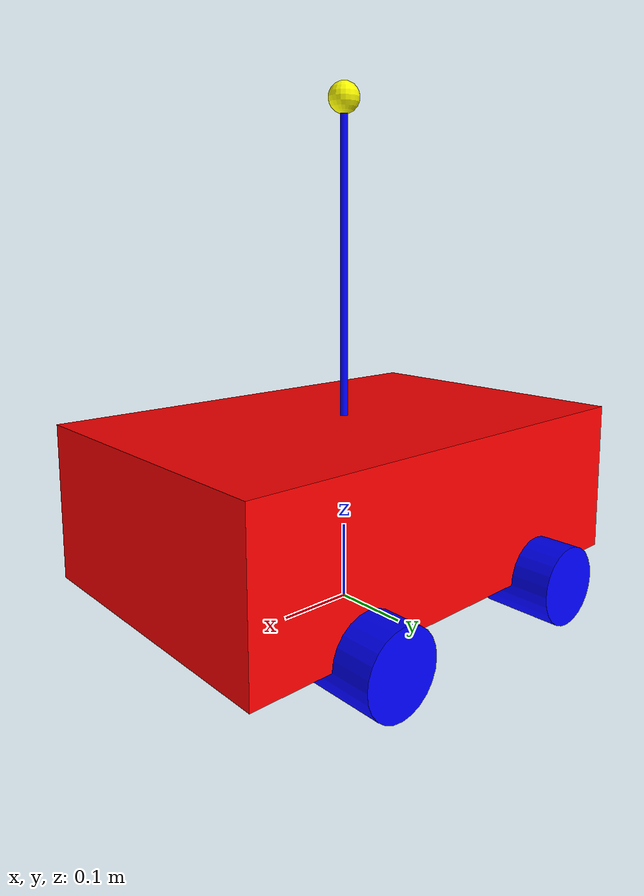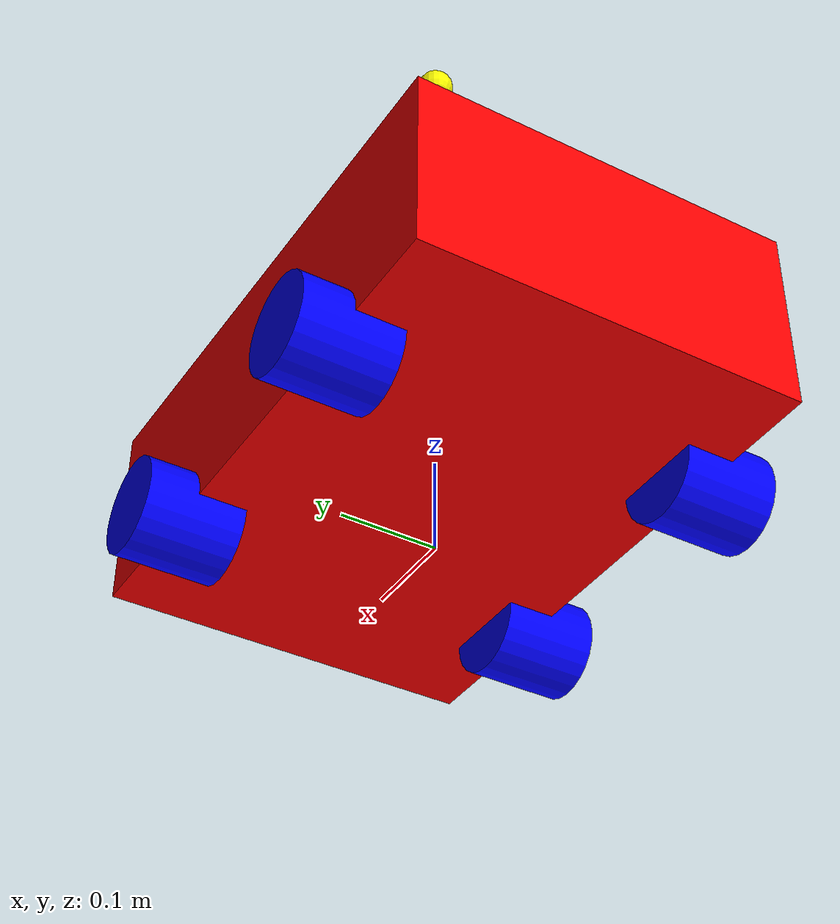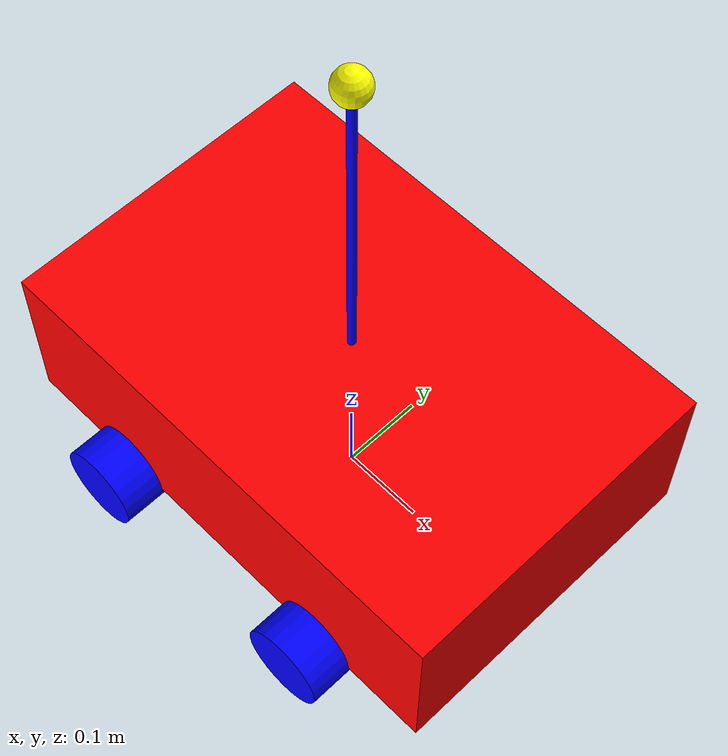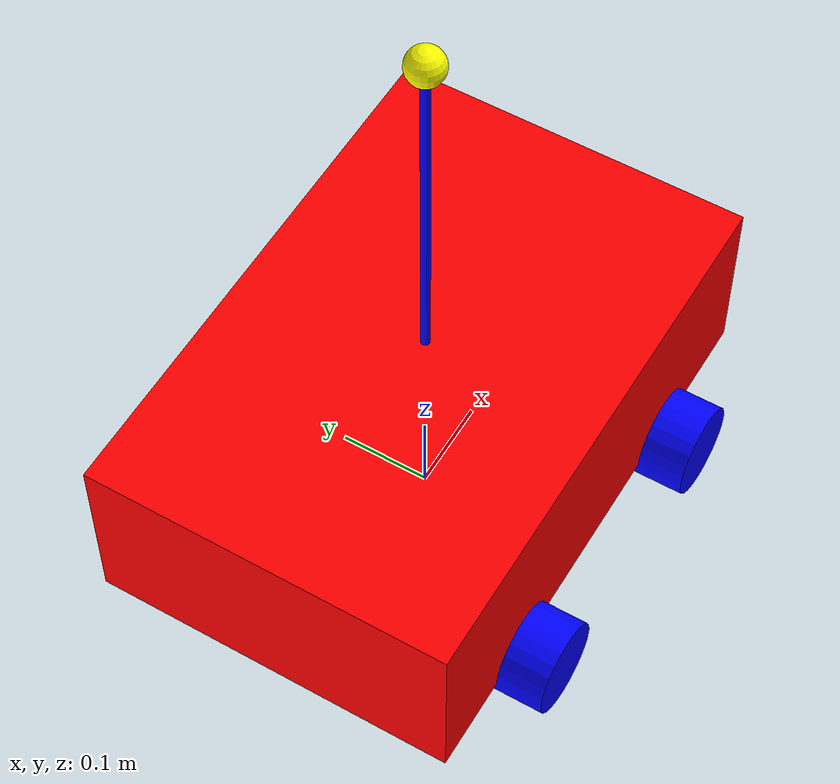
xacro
<?xml version="1.0"?>
<robot name="cartpole_balancer" xmlns:xacro="http://www.ros.org/wiki/xacro">
    <xacro:property name = "base_length" value = "0.6"/>
    <xacro:property name = "base_width" value = "0.4"/>
    <xacro:property name = "base_height" value = "0.2"/>
    <xacro:property name = "wheel_length" value = "0.1"/>
    <xacro:property name = "wheel_radius" value = "0.05"/>
    <xacro:property name = "cartpole_length" value = "0.4"/>
    <xacro:property name = "cartpole_radius" value = "0.005"/>
    <xacro:property name = "bob_radius" value = "0.02"/>
    <xacro:property name = "base_mass" value = "5"/>
    <xacro:property name = "wheel_mass" value = "1"/>
    <xacro:property name = "cartpole_mass" value = "0.1"/>
    <xacro:property name = "bob_mass" value = "0.5"/>

    <link name="root_link"/>
    <joint name="root_base_joint" type="fixed">
        <parent link="root_link"/>
        <child link="base_link"/>
        <origin xyz="0.0 0.0 0.15" rpy="0.0 0.0 0.0"/>
    </joint>

    <link name="base_link">
        <inertial>
            <origin xyz="0.0 0.0 0.0" rpy="0.0 0.0 0.0"/>
            <mass value="${base_mass}"/>
            <inertia ixx="${(base_mass)/12*(base_width*base_width + base_height*base_height)}" ixy="0.0" ixz="0.0" iyy="${(base_mass)/12*(base_length*base_length + base_height*base_height)}" iyz="0.0" izz="${(base_mass)/12*(base_length*base_length + base_width*base_width)}"/>
        </inertial>
        <visual name="visual">
            <origin xyz="0.0 0.0 0.0" rpy="0.0 0.0 0.0"/>
            <geometry>
                <box size="${base_length} ${base_width} ${base_height}"/>
            </geometry>
            <material name="material">
                <color rgba="1.0 0.0 0.0 1.0"/>
            </material>
        </visual>
        <collision>
            <origin xyz="0.0 0.0 0.0" rpy="0.0 0.0 0.0"/>
            <geometry>
                <box size="${base_length} ${base_width} ${base_height}"/>
            </geometry>
        </collision>
    </link>

    <xacro:macro name="wheels_links" params="name">
        <link name="${name}_link">
            <inertial>
                <origin xyz="0.0 0.0 0.0" rpy="0.0 0.0 0.0"/>
                <mass value="${wheel_mass}"/>
                <inertia ixx="${(wheel_mass/12)*(3*wheel_radius*wheel_radius + wheel_length*wheel_length)}" ixy="0.0" ixz="0.0" iyy="${(wheel_mass/12)*(3*wheel_radius*wheel_radius + wheel_length*wheel_length)}" iyz="0.0" izz="${(wheel_mass/2)*(wheel_radius*wheel_radius)}"/>
            </inertial>
            <visual name="visual_2">
                <origin xyz="0.0 0.0 0.0" rpy="${pi/2.0} 0.0 0.0"/>
                <geometry>
                    <cylinder radius="${wheel_radius}" length="${wheel_length}"/>
                </geometry>
                <material name="material">
                    <color rgba="0.0 0.0 1.0 1.0"/>
                </material>
            </visual>
            <collision>
                <origin xyz="0.0 0.0 0.0" rpy="${pi/2.0} 0.0 0.0"/>
                <geometry>
                    <cylinder radius="${wheel_radius}" length="${wheel_length}"/>
                </geometry>
            </collision>
        </link>
    </xacro:macro>

    <xacro:macro name="wheel_joints" params="name x y">
        <joint name="${name}_joint" type="continuous">
            <origin xyz="${x*(base_length / 4.0)} ${y*(base_width) / 2.0} -${base_height / 2.0}" rpy="0.0 0.0 0.0"/>
            <parent link="base_link"/>
            <child link="${name}_link"/>
            <axis xyz="0.0 1.0 0.0"/>
        </joint>
    </xacro:macro>

    <xacro:wheels_links name = "front_left_wheel"/>
    <xacro:wheels_links name = "front_right_wheel"/>
    <xacro:wheels_links name = "rear_left_wheel"/>
    <xacro:wheels_links name = "rear_right_wheel"/>

    <xacro:wheel_joints name = "front_left_wheel" x = "1.0" y = "1.0"/>
    <xacro:wheel_joints name = "front_right_wheel" x = "1.0" y = "-1.0"/>
    <xacro:wheel_joints name = "rear_left_wheel" x = "-1.0" y = "1.0"/>
    <xacro:wheel_joints name = "rear_right_wheel" x = "-1.0" y = "-1.0"/>

    <link name="cartpole_link">
        <inertial>
            <origin xyz="0.0 0.0 0.2" rpy="0.0 0.0 0.0"/>
            <mass value="${cartpole_mass}"/>
            <inertia ixx="${(cartpole_mass/12)*(3*cartpole_radius*cartpole_radius + cartpole_length*cartpole_length)}" ixy="0.0" ixz="0.0" iyy="${(cartpole_mass/12)*(3*cartpole_radius*cartpole_radius + cartpole_length*cartpole_length)}" iyz="0.0" izz="${(cartpole_mass/2)*(cartpole_radius*cartpole_radius)}"/>
        </inertial>
        <visual name="visual">
            <origin xyz="0.0 0.0 0.2" rpy="0.0 0.0 0.0"/>
            <geometry>
                <cylinder radius="${cartpole_radius}" length="${cartpole_length}"/>
            </geometry>
            <material name = "zzzzz">
                <color rgba="0.0 0.0 1.0 1.0"/>
            </material>
        </visual>
        <collision>
            <origin xyz="0.0 0.0 0.2" rpy="0.0 0.0 0.0"/>
            <geometry>
                <cylinder radius="${cartpole_radius}" length="${cartpole_length}"/>
            </geometry>
        </collision>
    </link>

    <joint name="cartpole_base_joint" type="revolute">
        <origin xyz="0.0 0.0 0.1" rpy="0.0 0.0 0.0"/>
        <parent link="base_link"/>
        <child link="cartpole_link"/>
        <axis xyz="0.0 1.0 0.0"/>
        <limit lower="-0.7" upper="0.7" effort="0.0" velocity="0.0"/>
    </joint>

    <link name="bob_link">
        <inertial>
            <origin xyz="0.0 0.0 0.0" rpy="0.0 0.0 0.0"/>
            <mass value="${bob_mass}"/>
            <inertia ixx="${((2*bob_mass)/5)*(bob_radius*bob_radius)}" ixy="0.0" ixz="0.0" iyy="${((2*bob_mass)/5)*(bob_radius*bob_radius)}" iyz="0.0" izz="${((2*bob_mass)/5)*(bob_radius*bob_radius)}"/>
        </inertial>
        <visual name="visual">
            <origin xyz="0.0 0.0 0.0" rpy="0.0 0.0 0.0"/>
            <geometry>
                <sphere radius="${bob_radius}"/>
            </geometry>
            <material name="">
                <color rgba="1.0 1.0 0.0 1.0"/>
            </material>
        </visual>
        <collision>
            <origin xyz="0.0 0.0 0.0" rpy="0.0 0.0 0.0"/>
            <geometry>
                <sphere radius="${bob_radius}"/>
            </geometry>
        </collision>
    </link>
    <joint name="bob_cartpole_joint" type="fixed">
        <parent link="cartpole_link"/>
        <child link="bob_link"/>
        <origin xyz="0.0 0.0 0.4" rpy="0.0 0.0 0.0"/>
    </joint>

</robot>
